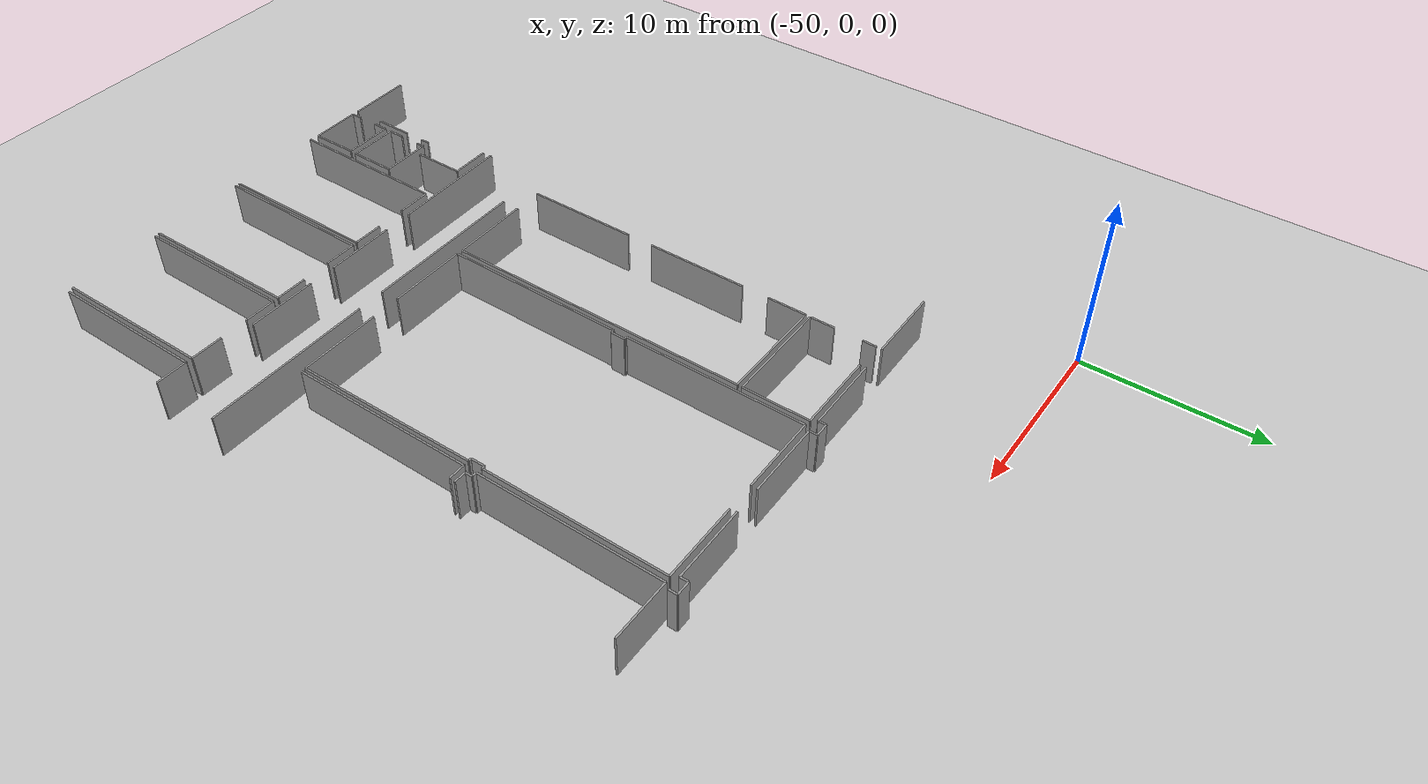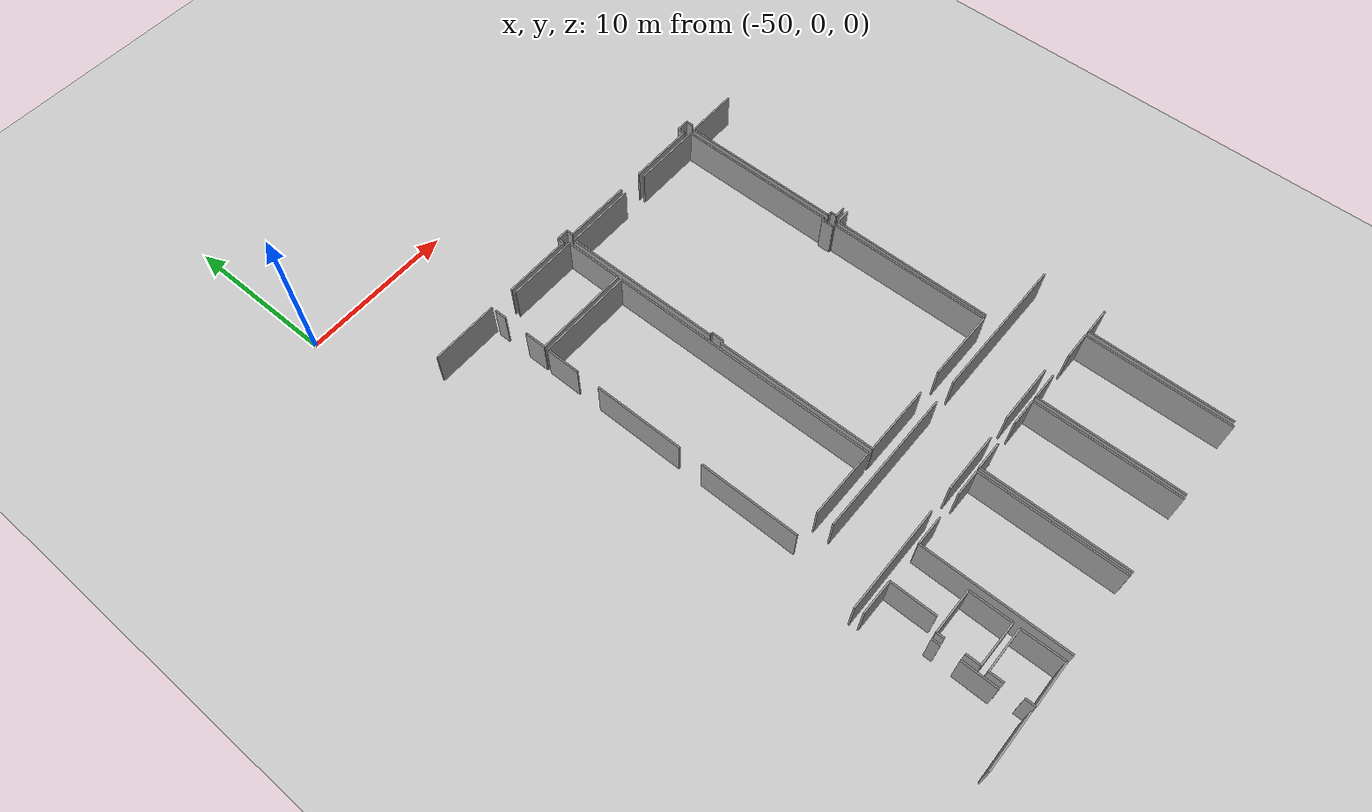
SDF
<sdf version="1.6">
 <world name="default">
  <model name="ground_plane">
   <static>1</static>
   <link name="link">
    <collision name="collision">
     <geometry><plane><normal>0 0 1</normal><size>100 100</size></plane></geometry>
     <surface><friction><ode><mu>100</mu><mu2>50</mu2></ode></friction></surface>
    </collision>
    <visual name="visual">
     <cast_shadows>0</cast_shadows>
     <geometry><plane><normal>0 0 1</normal><size>100 100</size></plane></geometry>
     <material>
      <script><uri>file://media/materials/scripts/gazebo.material</uri><name>Gazebo/Grey</name></script>
     </material>
    </visual>
   </link>
  </model>
  <model name="50015848">
   <static>1</static>
   <link name="Wall_643">
    <collision name="Wall_643_Collision">
     <geometry><box><size>0.479292605725 0.1 2.5</size></box></geometry>
     <pose>0.239646302863 0 1.25 0 0 0</pose>
    </collision>
    <visual name="Wall_643_Visual">
     <pose>0.239646302863 0 1.25 0 0 0</pose>
     <geometry><box><size>0.479292605725 0.1 2.5</size></box></geometry>
     <material>
      <script><uri>file://media/materials/scripts/gazebo.material</uri><name>Gazebo/Grey</name></script>
      <ambient>1 1 1 1</ambient>
     </material>
    </visual>
    <pose>107.364842149 -51.2619807293 0 0 0 1.57079632679</pose>
   </link>
   <link name="Wall_644">
    <collision name="Wall_644_Collision">
     <geometry><box><size>0.797975248812 0.1 2.5</size></box></geometry>
     <pose>0.398987624406 0 1.25 0 0 0</pose>
    </collision>
    <visual name="Wall_644_Visual">
     <pose>0.398987624406 0 1.25 0 0 0</pose>
     <geometry><box><size>0.797975248812 0.1 2.5</size></box></geometry>
     <material>
      <script><uri>file://media/materials/scripts/gazebo.material</uri><name>Gazebo/Grey</name></script>
      <ambient>1 1 1 1</ambient>
     </material>
    </visual>
    <pose>107.364842149 -50.7826881236 0 0 0 3.14159265359</pose>
   </link>
   <link name="Wall_645">
    <collision name="Wall_645_Collision">
     <geometry><box><size>0.464322640803 0.1 2.5</size></box></geometry>
     <pose>0.232161320402 0 1.25 0 0 0</pose>
    </collision>
    <visual name="Wall_645_Visual">
     <pose>0.232161320402 0 1.25 0 0 0</pose>
     <geometry><box><size>0.464322640803 0.1 2.5</size></box></geometry>
     <material>
      <script><uri>file://media/materials/scripts/gazebo.material</uri><name>Gazebo/Grey</name></script>
      <ambient>1 1 1 1</ambient>
     </material>
    </visual>
    <pose>106.566866901 -50.7826881236 0 0 0 -1.57079632679</pose>
   </link>
   <link name="Wall_646">
    <collision name="Wall_646_Collision">
     <geometry><box><size>4.35448369479 0.1 2.5</size></box></geometry>
     <pose>2.1772418474 0 1.25 0 0 0</pose>
    </collision>
    <visual name="Wall_646_Visual">
     <pose>2.1772418474 0 1.25 0 0 0</pose>
     <geometry><box><size>4.35448369479 0.1 2.5</size></box></geometry>
     <material>
      <script><uri>file://media/materials/scripts/gazebo.material</uri><name>Gazebo/Grey</name></script>
      <ambient>1 1 1 1</ambient>
     </material>
    </visual>
    <pose>106.566866901 -51.2470107644 0 0 0 3.14159265359</pose>
   </link>
   <link name="Wall_647">
    <collision name="Wall_647_Collision">
     <geometry><box><size>4.41258745695 0.1 2.5</size></box></geometry>
     <pose>2.20629372847 0 1.25 0 0 0</pose>
    </collision>
    <visual name="Wall_647_Visual">
     <pose>2.20629372847 0 1.25 0 0 0</pose>
     <geometry><box><size>4.41258745695 0.1 2.5</size></box></geometry>
     <material>
      <script><uri>file://media/materials/scripts/gazebo.material</uri><name>Gazebo/Grey</name></script>
      <ambient>1 1 1 1</ambient>
     </material>
    </visual>
    <pose>100.624805739 -51.2470107644 0 0 0 3.14159265359</pose>
   </link>
   <link name="Wall_648">
    <collision name="Wall_648_Collision">
     <geometry><box><size>0.446307937253 0.1 2.5</size></box></geometry>
     <pose>0.223153968627 0 1.25 0 0 0</pose>
    </collision>
    <visual name="Wall_648_Visual">
     <pose>0.223153968627 0 1.25 0 0 0</pose>
     <geometry><box><size>0.446307937253 0.1 2.5</size></box></geometry>
     <material>
      <script><uri>file://media/materials/scripts/gazebo.material</uri><name>Gazebo/Grey</name></script>
      <ambient>1 1 1 1</ambient>
     </material>
    </visual>
    <pose>96.2122182824 -51.2470107644 0 0 0 1.57079632679</pose>
   </link>
   <link name="Wall_649">
    <collision name="Wall_649_Collision">
     <geometry><box><size>0.786557478956 0.1 2.5</size></box></geometry>
     <pose>0.393278739478 0 1.25 0 0 0</pose>
    </collision>
    <visual name="Wall_649_Visual">
     <pose>0.393278739478 0 1.25 0 0 0</pose>
     <geometry><box><size>0.786557478956 0.1 2.5</size></box></geometry>
     <material>
      <script><uri>file://media/materials/scripts/gazebo.material</uri><name>Gazebo/Grey</name></script>
      <ambient>1 1 1 1</ambient>
     </material>
    </visual>
    <pose>96.2122182824 -50.8007028272 0 0 0 3.14159265359</pose>
   </link>
   <link name="Wall_650">
    <collision name="Wall_650_Collision">
     <geometry><box><size>0.431845428769 0.1 2.5</size></box></geometry>
     <pose>0.215922714384 0 1.25 0 0 0</pose>
    </collision>
    <visual name="Wall_650_Visual">
     <pose>0.215922714384 0 1.25 0 0 0</pose>
     <geometry><box><size>0.431845428769 0.1 2.5</size></box></geometry>
     <material>
      <script><uri>file://media/materials/scripts/gazebo.material</uri><name>Gazebo/Grey</name></script>
      <ambient>1 1 1 1</ambient>
     </material>
    </visual>
    <pose>95.4256608034 -50.8007028272 0 0 0 -1.57079632679</pose>
   </link>
   <link name="Wall_651">
    <collision name="Wall_651_Collision">
     <geometry><box><size>4.43922891994 0.1 2.5</size></box></geometry>
     <pose>2.21961445997 0 1.25 0 0 0</pose>
    </collision>
    <visual name="Wall_651_Visual">
     <pose>2.21961445997 0 1.25 0 0 0</pose>
     <geometry><box><size>4.43922891994 0.1 2.5</size></box></geometry>
     <material>
      <script><uri>file://media/materials/scripts/gazebo.material</uri><name>Gazebo/Grey</name></script>
      <ambient>1 1 1 1</ambient>
     </material>
    </visual>
    <pose>95.4256608034 -51.2325482559 0 0 0 3.14159265359</pose>
   </link>
   <link name="Wall_652">
    <collision name="Wall_652_Collision">
     <geometry><box><size>4.41108558579 0.1 2.5</size></box></geometry>
     <pose>2.20554279289 0 1.25 0 0 0</pose>
    </collision>
    <visual name="Wall_652_Visual">
     <pose>2.20554279289 0 1.25 0 0 0</pose>
     <geometry><box><size>4.41108558579 0.1 2.5</size></box></geometry>
     <material>
      <script><uri>file://media/materials/scripts/gazebo.material</uri><name>Gazebo/Grey</name></script>
      <ambient>1 1 1 1</ambient>
     </material>
    </visual>
    <pose>89.3833769957 -51.2325482559 0 0 0 -3.13854405791</pose>
   </link>
   <link name="Wall_1404">
    <collision name="Wall_1404_Collision">
     <geometry><box><size>0.696230232986 0.1 2.5</size></box></geometry>
     <pose>0.348115116493 0 1.25 0 0 0</pose>
    </collision>
    <visual name="Wall_1404_Visual">
     <pose>0.348115116493 0 1.25 0 0 0</pose>
     <geometry><box><size>0.696230232986 0.1 2.5</size></box></geometry>
     <material>
      <script><uri>file://media/materials/scripts/gazebo.material</uri><name>Gazebo/Grey</name></script>
      <ambient>1 1 1 1</ambient>
     </material>
    </visual>
    <pose>108.104713636 -62.4173956067 0 0 0 3.14159265359</pose>
   </link>
   <link name="Wall_1405">
    <collision name="Wall_1405_Collision">
     <geometry><box><size>0.406218878648 0.1 2.5</size></box></geometry>
     <pose>0.203109439324 0 1.25 0 0 0</pose>
    </collision>
    <visual name="Wall_1405_Visual">
     <pose>0.203109439324 0 1.25 0 0 0</pose>
     <geometry><box><size>0.406218878648 0.1 2.5</size></box></geometry>
     <material>
      <script><uri>file://media/materials/scripts/gazebo.material</uri><name>Gazebo/Grey</name></script>
      <ambient>1 1 1 1</ambient>
     </material>
    </visual>
    <pose>107.408483403 -62.4173956067 0 0 0 1.57079632679</pose>
   </link>
   <link name="Wall_1406">
    <collision name="Wall_1406_Collision">
     <geometry><box><size>0.275802574073 0.1 2.5</size></box></geometry>
     <pose>0.137901287036 0 1.25 0 0 0</pose>
    </collision>
    <visual name="Wall_1406_Visual">
     <pose>0.137901287036 0 1.25 0 0 0</pose>
     <geometry><box><size>0.275802574073 0.1 2.5</size></box></geometry>
     <material>
      <script><uri>file://media/materials/scripts/gazebo.material</uri><name>Gazebo/Grey</name></script>
      <ambient>1 1 1 1</ambient>
     </material>
    </visual>
    <pose>107.408483403 -62.011176728 0 0 0 3.14159265359</pose>
   </link>
   <link name="Wall_1407">
    <collision name="Wall_1407_Collision">
     <geometry><box><size>10.462229383 0.1 2.5</size></box></geometry>
     <pose>5.2311146915 0 1.25 0 0 0</pose>
    </collision>
    <visual name="Wall_1407_Visual">
     <pose>5.2311146915 0 1.25 0 0 0</pose>
     <geometry><box><size>10.462229383 0.1 2.5</size></box></geometry>
     <material>
      <script><uri>file://media/materials/scripts/gazebo.material</uri><name>Gazebo/Grey</name></script>
      <ambient>1 1 1 1</ambient>
     </material>
    </visual>
    <pose>107.132680829 -62.011176728 0 0 0 1.57079632679</pose>
   </link>
   <link name="Wall_1408">
    <collision name="Wall_1408_Collision">
     <geometry><box><size>3.46846475398 0.1 2.5</size></box></geometry>
     <pose>1.73423237699 0 1.25 0 0 0</pose>
    </collision>
    <visual name="Wall_1408_Visual">
     <pose>1.73423237699 0 1.25 0 0 0</pose>
     <geometry><box><size>3.46846475398 0.1 2.5</size></box></geometry>
     <material>
      <script><uri>file://media/materials/scripts/gazebo.material</uri><name>Gazebo/Grey</name></script>
      <ambient>1 1 1 1</ambient>
     </material>
    </visual>
    <pose>107.132680829 -51.5489473451 0 0 0 0.0</pose>
   </link>
   <link name="Wall_1412">
    <collision name="Wall_1412_Collision">
     <geometry><box><size>10.4586771879 0.1 2.5</size></box></geometry>
     <pose>5.22933859397 0 1.25 0 0 0</pose>
    </collision>
    <visual name="Wall_1412_Visual">
     <pose>5.22933859397 0 1.25 0 0 0</pose>
     <geometry><box><size>10.4586771879 0.1 2.5</size></box></geometry>
     <material>
      <script><uri>file://media/materials/scripts/gazebo.material</uri><name>Gazebo/Grey</name></script>
      <ambient>1 1 1 1</ambient>
     </material>
    </visual>
    <pose>107.11821832 -73.2104865873 0 0 0 1.57079632679</pose>
   </link>
   <link name="Wall_1413">
    <collision name="Wall_1413_Collision">
     <geometry><box><size>0.948182354471 0.1 2.5</size></box></geometry>
     <pose>0.474091177235 0 1.25 0 0 0</pose>
    </collision>
    <visual name="Wall_1413_Visual">
     <pose>0.474091177235 0 1.25 0 0 0</pose>
     <geometry><box><size>0.948182354471 0.1 2.5</size></box></geometry>
     <material>
      <script><uri>file://media/materials/scripts/gazebo.material</uri><name>Gazebo/Grey</name></script>
      <ambient>1 1 1 1</ambient>
     </material>
    </visual>
    <pose>107.11821832 -62.7518093994 0 0 0 0.0</pose>
   </link>
   <link name="Wall_1417">
    <collision name="Wall_1417_Collision">
     <geometry><box><size>4.66174856802 0.1 2.5</size></box></geometry>
     <pose>2.33087428401 0 1.25 0 0 0</pose>
    </collision>
    <visual name="Wall_1417_Visual">
     <pose>2.33087428401 0 1.25 0 0 0</pose>
     <geometry><box><size>4.66174856802 0.1 2.5</size></box></geometry>
     <material>
      <script><uri>file://media/materials/scripts/gazebo.material</uri><name>Gazebo/Grey</name></script>
      <ambient>1 1 1 1</ambient>
     </material>
    </visual>
    <pose>106.865505014 -73.2389041478 0 0 0 3.14159265359</pose>
   </link>
   <link name="Wall_1418">
    <collision name="Wall_1418_Collision">
     <geometry><box><size>4.56710794233 0.1 2.5</size></box></geometry>
     <pose>2.28355397116 0 1.25 0 0 0</pose>
    </collision>
    <visual name="Wall_1418_Visual">
     <pose>2.28355397116 0 1.25 0 0 0</pose>
     <geometry><box><size>4.56710794233 0.1 2.5</size></box></geometry>
     <material>
      <script><uri>file://media/materials/scripts/gazebo.material</uri><name>Gazebo/Grey</name></script>
      <ambient>1 1 1 1</ambient>
     </material>
    </visual>
    <pose>100.522553267 -73.2389041478 0 0 0 3.14159265359</pose>
   </link>
   <link name="Wall_1419">
    <collision name="Wall_1419_Collision">
     <geometry><box><size>10.4538563518 0.1 2.5</size></box></geometry>
     <pose>5.22692817588 0 1.25 0 0 0</pose>
    </collision>
    <visual name="Wall_1419_Visual">
     <pose>5.22692817588 0 1.25 0 0 0</pose>
     <geometry><box><size>10.4538563518 0.1 2.5</size></box></geometry>
     <material>
      <script><uri>file://media/materials/scripts/gazebo.material</uri><name>Gazebo/Grey</name></script>
      <ambient>1 1 1 1</ambient>
     </material>
    </visual>
    <pose>95.9554453247 -73.2389041478 0 0 0 1.57079632679</pose>
   </link>
   <link name="Wall_1420">
    <collision name="Wall_1420_Collision">
     <geometry><box><size>0.202982575215 0.1 2.5</size></box></geometry>
     <pose>0.101491287607 0 1.25 0 0 0</pose>
    </collision>
    <visual name="Wall_1420_Visual">
     <pose>0.101491287607 0 1.25 0 0 0</pose>
     <geometry><box><size>0.202982575215 0.1 2.5</size></box></geometry>
     <material>
      <script><uri>file://media/materials/scripts/gazebo.material</uri><name>Gazebo/Grey</name></script>
      <ambient>1 1 1 1</ambient>
     </material>
    </visual>
    <pose>95.9554453247 -62.7850477961 0 0 0 0.0</pose>
   </link>
   <link name="Wall_1421">
    <collision name="Wall_1421_Collision">
     <geometry><box><size>0.816243680582 0.1 2.5</size></box></geometry>
     <pose>0.408121840291 0 1.25 0 0 0</pose>
    </collision>
    <visual name="Wall_1421_Visual">
     <pose>0.408121840291 0 1.25 0 0 0</pose>
     <geometry><box><size>0.816243680582 0.1 2.5</size></box></geometry>
     <material>
      <script><uri>file://media/materials/scripts/gazebo.material</uri><name>Gazebo/Grey</name></script>
      <ambient>1 1 1 1</ambient>
     </material>
    </visual>
    <pose>96.1584279 -62.7850477961 0 0 0 1.57079632679</pose>
   </link>
   <link name="Wall_1422">
    <collision name="Wall_1422_Collision">
     <geometry><box><size>0.176594840437 0.1 2.5</size></box></geometry>
     <pose>0.0882974202183 0 1.25 0 0 0</pose>
    </collision>
    <visual name="Wall_1422_Visual">
     <pose>0.0882974202183 0 1.25 0 0 0</pose>
     <geometry><box><size>0.176594840437 0.1 2.5</size></box></geometry>
     <material>
      <script><uri>file://media/materials/scripts/gazebo.material</uri><name>Gazebo/Grey</name></script>
      <ambient>1 1 1 1</ambient>
     </material>
    </visual>
    <pose>96.1584279 -61.9688041155 0 0 0 3.14159265359</pose>
   </link>
   <link name="Wall_1423">
    <collision name="Wall_1423_Collision">
     <geometry><box><size>10.3698723113 0.1 2.5</size></box></geometry>
     <pose>5.18493615564 0 1.25 0 0 0</pose>
    </collision>
    <visual name="Wall_1423_Visual">
     <pose>5.18493615564 0 1.25 0 0 0</pose>
     <geometry><box><size>10.3698723113 0.1 2.5</size></box></geometry>
     <material>
      <script><uri>file://media/materials/scripts/gazebo.material</uri><name>Gazebo/Grey</name></script>
      <ambient>1 1 1 1</ambient>
     </material>
    </visual>
    <pose>95.9818330595 -61.9688041155 0 0 0 1.57079632679</pose>
   </link>
   <link name="Wall_1424">
    <collision name="Wall_1424_Collision">
     <geometry><box><size>4.61125665244 0.1 2.5</size></box></geometry>
     <pose>2.30562832622 0 1.25 0 0 0</pose>
    </collision>
    <visual name="Wall_1424_Visual">
     <pose>2.30562832622 0 1.25 0 0 0</pose>
     <geometry><box><size>4.61125665244 0.1 2.5</size></box></geometry>
     <material>
      <script><uri>file://media/materials/scripts/gazebo.material</uri><name>Gazebo/Grey</name></script>
      <ambient>1 1 1 1</ambient>
     </material>
    </visual>
    <pose>95.9818330595 -51.5989318042 0 0 0 0.0</pose>
   </link>
   <link name="Wall_1425">
    <collision name="Wall_1425_Collision">
     <geometry><box><size>4.51636229852 0.1 2.5</size></box></geometry>
     <pose>2.25818114926 0 1.25 0 0 0</pose>
    </collision>
    <visual name="Wall_1425_Visual">
     <pose>2.25818114926 0 1.25 0 0 0</pose>
     <geometry><box><size>4.51636229852 0.1 2.5</size></box></geometry>
     <material>
      <script><uri>file://media/materials/scripts/gazebo.material</uri><name>Gazebo/Grey</name></script>
      <ambient>1 1 1 1</ambient>
     </material>
    </visual>
    <pose>102.273277978 -51.5989318042 0 0 0 0.0</pose>
   </link>
   <link name="Wall_1426">
    <collision name="Wall_1426_Collision">
     <geometry><box><size>10.3604843672 0.1 2.5</size></box></geometry>
     <pose>5.18024218359 0 1.25 0 0 0</pose>
    </collision>
    <visual name="Wall_1426_Visual">
     <pose>5.18024218359 0 1.25 0 0 0</pose>
     <geometry><box><size>10.3604843672 0.1 2.5</size></box></geometry>
     <material>
      <script><uri>file://media/materials/scripts/gazebo.material</uri><name>Gazebo/Grey</name></script>
      <ambient>1 1 1 1</ambient>
     </material>
    </visual>
    <pose>106.789640277 -51.5989318042 0 0 0 -1.57079632679</pose>
   </link>
   <link name="Wall_1427">
    <collision name="Wall_1427_Collision">
     <geometry><box><size>0.169744178523 0.1 2.5</size></box></geometry>
     <pose>0.0848720892616 0 1.25 0 0 0</pose>
    </collision>
    <visual name="Wall_1427_Visual">
     <pose>0.0848720892616 0 1.25 0 0 0</pose>
     <geometry><box><size>0.169744178523 0.1 2.5</size></box></geometry>
     <material>
      <script><uri>file://media/materials/scripts/gazebo.material</uri><name>Gazebo/Grey</name></script>
      <ambient>1 1 1 1</ambient>
     </material>
    </visual>
    <pose>106.789640277 -61.9594161714 0 0 0 3.14159265359</pose>
   </link>
   <link name="Wall_1428">
    <collision name="Wall_1428_Collision">
     <geometry><box><size>0.807363192916 0.1 2.5</size></box></geometry>
     <pose>0.403681596458 0 1.25 0 0 0</pose>
    </collision>
    <visual name="Wall_1428_Visual">
     <pose>0.403681596458 0 1.25 0 0 0</pose>
     <geometry><box><size>0.807363192916 0.1 2.5</size></box></geometry>
     <material>
      <script><uri>file://media/materials/scripts/gazebo.material</uri><name>Gazebo/Grey</name></script>
      <ambient>1 1 1 1</ambient>
     </material>
    </visual>
    <pose>106.619896098 -61.9594161714 0 0 0 -1.57079632679</pose>
   </link>
   <link name="Wall_1429">
    <collision name="Wall_1429_Collision">
     <geometry><box><size>0.176594840437 0.1 2.5</size></box></geometry>
     <pose>0.0882974202183 0 1.25 0 0 0</pose>
    </collision>
    <visual name="Wall_1429_Visual">
     <pose>0.0882974202183 0 1.25 0 0 0</pose>
     <geometry><box><size>0.176594840437 0.1 2.5</size></box></geometry>
     <material>
      <script><uri>file://media/materials/scripts/gazebo.material</uri><name>Gazebo/Grey</name></script>
      <ambient>1 1 1 1</ambient>
     </material>
    </visual>
    <pose>106.619896098 -62.7667793643 0 0 0 0.0</pose>
   </link>
   <link name="Wall_1430">
    <collision name="Wall_1430_Collision">
     <geometry><box><size>10.4723521916 0.1 2.5</size></box></geometry>
     <pose>5.23617609579 0 1.25 0 0 0</pose>
    </collision>
    <visual name="Wall_1430_Visual">
     <pose>5.23617609579 0 1.25 0 0 0</pose>
     <geometry><box><size>10.4723521916 0.1 2.5</size></box></geometry>
     <material>
      <script><uri>file://media/materials/scripts/gazebo.material</uri><name>Gazebo/Grey</name></script>
      <ambient>1 1 1 1</ambient>
     </material>
    </visual>
    <pose>106.796490939 -62.7667793643 0 0 0 -1.56420615738</pose>
   </link>
   <link name="Wall_1431">
    <collision name="Wall_1431_Collision">
     <geometry><box><size>6.24120673141 0.1 2.5</size></box></geometry>
     <pose>3.1206033657 0 1.25 0 0 0</pose>
    </collision>
    <visual name="Wall_1431_Visual">
     <pose>3.1206033657 0 1.25 0 0 0</pose>
     <geometry><box><size>6.24120673141 0.1 2.5</size></box></geometry>
     <material>
      <script><uri>file://media/materials/scripts/gazebo.material</uri><name>Gazebo/Grey</name></script>
      <ambient>1 1 1 1</ambient>
     </material>
    </visual>
    <pose>95.617479337 -55.3477662402 0 0 0 3.14159265359</pose>
   </link>
   <link name="Wall_1432">
    <collision name="Wall_1432_Collision">
     <geometry><box><size>1.41707210322 0.1 2.5</size></box></geometry>
     <pose>0.708536051608 0 1.25 0 0 0</pose>
    </collision>
    <visual name="Wall_1432_Visual">
     <pose>0.708536051608 0 1.25 0 0 0</pose>
     <geometry><box><size>1.41707210322 0.1 2.5</size></box></geometry>
     <material>
      <script><uri>file://media/materials/scripts/gazebo.material</uri><name>Gazebo/Grey</name></script>
      <ambient>1 1 1 1</ambient>
     </material>
    </visual>
    <pose>89.3762726056 -55.3477662402 0 0 0 1.57079632679</pose>
   </link>
   <link name="Wall_1433">
    <collision name="Wall_1433_Collision">
     <geometry><box><size>0.778184447729 0.1 2.5</size></box></geometry>
     <pose>0.389092223864 0 1.25 0 0 0</pose>
    </collision>
    <visual name="Wall_1433_Visual">
     <pose>0.389092223864 0 1.25 0 0 0</pose>
     <geometry><box><size>0.778184447729 0.1 2.5</size></box></geometry>
     <material>
      <script><uri>file://media/materials/scripts/gazebo.material</uri><name>Gazebo/Grey</name></script>
      <ambient>1 1 1 1</ambient>
     </material>
    </visual>
    <pose>89.3762726056 -52.3271317928 0 0 0 1.57079632679</pose>
   </link>
   <link name="Wall_1434">
    <collision name="Wall_1434_Collision">
     <geometry><box><size>4.6427189516 0.1 2.5</size></box></geometry>
     <pose>2.3213594758 0 1.25 0 0 0</pose>
    </collision>
    <visual name="Wall_1434_Visual">
     <pose>2.3213594758 0 1.25 0 0 0</pose>
     <geometry><box><size>4.6427189516 0.1 2.5</size></box></geometry>
     <material>
      <script><uri>file://media/materials/scripts/gazebo.material</uri><name>Gazebo/Grey</name></script>
      <ambient>1 1 1 1</ambient>
     </material>
    </visual>
    <pose>90.9937900018 -51.5489473451 0 0 0 0.0</pose>
   </link>
   <link name="Wall_1435">
    <collision name="Wall_1435_Collision">
     <geometry><box><size>3.79886655785 0.1 2.5</size></box></geometry>
     <pose>1.89943327893 0 1.25 0 0 0</pose>
    </collision>
    <visual name="Wall_1435_Visual">
     <pose>1.89943327893 0 1.25 0 0 0</pose>
     <geometry><box><size>3.79886655785 0.1 2.5</size></box></geometry>
     <material>
      <script><uri>file://media/materials/scripts/gazebo.material</uri><name>Gazebo/Grey</name></script>
      <ambient>1 1 1 1</ambient>
     </material>
    </visual>
    <pose>95.6365089534 -51.5489473451 0 0 0 -1.57580563568</pose>
   </link>
   <link name="Wall_1444">
    <collision name="Wall_1444_Collision">
     <geometry><box><size>4.58791365629 0.1 2.5</size></box></geometry>
     <pose>2.29395682814 0 1.25 0 0 0</pose>
    </collision>
    <visual name="Wall_1444_Visual">
     <pose>2.29395682814 0 1.25 0 0 0</pose>
     <geometry><box><size>4.58791365629 0.1 2.5</size></box></geometry>
     <material>
      <script><uri>file://media/materials/scripts/gazebo.material</uri><name>Gazebo/Grey</name></script>
      <ambient>1 1 1 1</ambient>
     </material>
    </visual>
    <pose>95.6207778039 -73.2120089566 0 0 0 3.14159265359</pose>
   </link>
   <link name="Wall_1445">
    <collision name="Wall_1445_Collision">
     <geometry><box><size>6.40638380199 0.1 2.5</size></box></geometry>
     <pose>3.203191901 0 1.25 0 0 0</pose>
    </collision>
    <visual name="Wall_1445_Visual">
     <pose>3.203191901 0 1.25 0 0 0</pose>
     <geometry><box><size>6.40638380199 0.1 2.5</size></box></geometry>
     <material>
      <script><uri>file://media/materials/scripts/gazebo.material</uri><name>Gazebo/Grey</name></script>
      <ambient>1 1 1 1</ambient>
     </material>
    </visual>
    <pose>89.3618100971 -73.2120089566 0 0 0 1.57079632679</pose>
   </link>
   <link name="Wall_1446">
    <collision name="Wall_1446_Collision">
     <geometry><box><size>5.84665935084 0.1 2.5</size></box></geometry>
     <pose>2.92332967542 0 1.25 0 0 0</pose>
    </collision>
    <visual name="Wall_1446_Visual">
     <pose>2.92332967542 0 1.25 0 0 0</pose>
     <geometry><box><size>5.84665935084 0.1 2.5</size></box></geometry>
     <material>
      <script><uri>file://media/materials/scripts/gazebo.material</uri><name>Gazebo/Grey</name></script>
      <ambient>1 1 1 1</ambient>
     </material>
    </visual>
    <pose>89.3618100971 -65.2781812761 0 0 0 1.57079632679</pose>
   </link>
   <link name="Wall_1447">
    <collision name="Wall_1447_Collision">
     <geometry><box><size>2.25209167201 0.1 2.5</size></box></geometry>
     <pose>1.126045836 0 1.25 0 0 0</pose>
    </collision>
    <visual name="Wall_1447_Visual">
     <pose>1.126045836 0 1.25 0 0 0</pose>
     <geometry><box><size>2.25209167201 0.1 2.5</size></box></geometry>
     <material>
      <script><uri>file://media/materials/scripts/gazebo.material</uri><name>Gazebo/Grey</name></script>
      <ambient>1 1 1 1</ambient>
     </material>
    </visual>
    <pose>89.3618100971 -57.8802275942 0 0 0 1.57079632679</pose>
   </link>
   <link name="Wall_1448">
    <collision name="Wall_1448_Collision">
     <geometry><box><size>6.24222164429 0.1 2.5</size></box></geometry>
     <pose>3.12111082214 0 1.25 0 0 0</pose>
    </collision>
    <visual name="Wall_1448_Visual">
     <pose>3.12111082214 0 1.25 0 0 0</pose>
     <geometry><box><size>6.24222164429 0.1 2.5</size></box></geometry>
     <material>
      <script><uri>file://media/materials/scripts/gazebo.material</uri><name>Gazebo/Grey</name></script>
      <ambient>1 1 1 1</ambient>
     </material>
    </visual>
    <pose>89.3618100971 -55.6281359222 0 0 0 0.0</pose>
   </link>
   <link name="Wall_1449">
    <collision name="Wall_1449_Collision">
     <geometry><box><size>17.5838810085 0.1 2.5</size></box></geometry>
     <pose>8.79194050424 0 1.25 0 0 0</pose>
    </collision>
    <visual name="Wall_1449_Visual">
     <pose>8.79194050424 0 1.25 0 0 0</pose>
     <geometry><box><size>17.5838810085 0.1 2.5</size></box></geometry>
     <material>
      <script><uri>file://media/materials/scripts/gazebo.material</uri><name>Gazebo/Grey</name></script>
      <ambient>1 1 1 1</ambient>
     </material>
    </visual>
    <pose>95.6040317414 -55.6281359222 0 0 0 -1.56984397362</pose>
   </link>
   <link name="Wall_1474">
    <collision name="Wall_1474_Collision">
     <geometry><box><size>9.57062842137 0.1 2.5</size></box></geometry>
     <pose>4.78531421068 0 1.25 0 0 0</pose>
    </collision>
    <visual name="Wall_1474_Visual">
     <pose>4.78531421068 0 1.25 0 0 0</pose>
     <geometry><box><size>9.57062842137 0.1 2.5</size></box></geometry>
     <material>
      <script><uri>file://media/materials/scripts/gazebo.material</uri><name>Gazebo/Grey</name></script>
      <ambient>1 1 1 1</ambient>
     </material>
    </visual>
    <pose>91.022968747 -74.2462051773 0 0 0 0.0</pose>
   </link>
   <link name="Wall_1475">
    <collision name="Wall_1475_Collision">
     <geometry><box><size>9.57316570356 0.1 2.5</size></box></geometry>
     <pose>4.78658285178 0 1.25 0 0 0</pose>
    </collision>
    <visual name="Wall_1475_Visual">
     <pose>4.78658285178 0 1.25 0 0 0</pose>
     <geometry><box><size>9.57316570356 0.1 2.5</size></box></geometry>
     <material>
      <script><uri>file://media/materials/scripts/gazebo.material</uri><name>Gazebo/Grey</name></script>
      <ambient>1 1 1 1</ambient>
     </material>
    </visual>
    <pose>102.198428154 -74.2462051773 0 0 0 0.0</pose>
   </link>
   <link name="Wall_1508">
    <collision name="Wall_1508_Collision">
     <geometry><box><size>3.933041123 0.1 2.5</size></box></geometry>
     <pose>1.9665205615 0 1.25 0 0 0</pose>
    </collision>
    <visual name="Wall_1508_Visual">
     <pose>1.9665205615 0 1.25 0 0 0</pose>
     <geometry><box><size>3.933041123 0.1 2.5</size></box></geometry>
     <material>
      <script><uri>file://media/materials/scripts/gazebo.material</uri><name>Gazebo/Grey</name></script>
      <ambient>1 1 1 1</ambient>
     </material>
    </visual>
    <pose>106.16952851 -77.7331920913 0 0 0 3.14159265359</pose>
   </link>
   <link name="Wall_1509">
    <collision name="Wall_1509_Collision">
     <geometry><box><size>3.96019004244 0.1 2.5</size></box></geometry>
     <pose>1.98009502122 0 1.25 0 0 0</pose>
    </collision>
    <visual name="Wall_1509_Visual">
     <pose>1.98009502122 0 1.25 0 0 0</pose>
     <geometry><box><size>3.96019004244 0.1 2.5</size></box></geometry>
     <material>
      <script><uri>file://media/materials/scripts/gazebo.material</uri><name>Gazebo/Grey</name></script>
      <ambient>1 1 1 1</ambient>
     </material>
    </visual>
    <pose>100.615164067 -77.7331920913 0 0 0 3.14159265359</pose>
   </link>
   <link name="Wall_1510">
    <collision name="Wall_1510_Collision">
     <geometry><box><size>6.93523306149 0.1 2.5</size></box></geometry>
     <pose>3.46761653074 0 1.25 0 0 0</pose>
    </collision>
    <visual name="Wall_1510_Visual">
     <pose>3.46761653074 0 1.25 0 0 0</pose>
     <geometry><box><size>6.93523306149 0.1 2.5</size></box></geometry>
     <material>
      <script><uri>file://media/materials/scripts/gazebo.material</uri><name>Gazebo/Grey</name></script>
      <ambient>1 1 1 1</ambient>
     </material>
    </visual>
    <pose>94.9651440859 -77.7331920913 0 0 0 -3.13679994891</pose>
   </link>
   <link name="Wall_1511">
    <collision name="Wall_1511_Collision">
     <geometry><box><size>2.88615849133 0.1 2.5</size></box></geometry>
     <pose>1.44307924567 0 1.25 0 0 0</pose>
    </collision>
    <visual name="Wall_1511_Visual">
     <pose>1.44307924567 0 1.25 0 0 0</pose>
     <geometry><box><size>2.88615849133 0.1 2.5</size></box></geometry>
     <material>
      <script><uri>file://media/materials/scripts/gazebo.material</uri><name>Gazebo/Grey</name></script>
      <ambient>1 1 1 1</ambient>
     </material>
    </visual>
    <pose>90.3655589316 -81.1864331521 0 0 0 1.57079632679</pose>
   </link>
   <link name="Wall_1512">
    <collision name="Wall_1512_Collision">
     <geometry><box><size>2.25209167201 0.1 2.5</size></box></geometry>
     <pose>1.126045836 0 1.25 0 0 0</pose>
    </collision>
    <visual name="Wall_1512_Visual">
     <pose>1.126045836 0 1.25 0 0 0</pose>
     <geometry><box><size>2.25209167201 0.1 2.5</size></box></geometry>
     <material>
      <script><uri>file://media/materials/scripts/gazebo.material</uri><name>Gazebo/Grey</name></script>
      <ambient>1 1 1 1</ambient>
     </material>
    </visual>
    <pose>90.3655589316 -78.3002746608 0 0 0 3.14159265359</pose>
   </link>
   <link name="Wall_1516">
    <collision name="Wall_1516_Collision">
     <geometry><box><size>3.68895457631 0.1 2.5</size></box></geometry>
     <pose>1.84447728815 0 1.25 0 0 0</pose>
    </collision>
    <visual name="Wall_1516_Visual">
     <pose>1.84447728815 0 1.25 0 0 0</pose>
     <geometry><box><size>3.68895457631 0.1 2.5</size></box></geometry>
     <material>
      <script><uri>file://media/materials/scripts/gazebo.material</uri><name>Gazebo/Grey</name></script>
      <ambient>1 1 1 1</ambient>
     </material>
    </visual>
    <pose>89.264378461 -87.3426409302 0 0 0 3.14159265359</pose>
   </link>
   <link name="Wall_1520">
    <collision name="Wall_1520_Collision">
     <geometry><box><size>0.549321594174 0.1 2.5</size></box></geometry>
     <pose>0.274660797087 0 1.25 0 0 0</pose>
    </collision>
    <visual name="Wall_1520_Visual">
     <pose>0.274660797087 0 1.25 0 0 0</pose>
     <geometry><box><size>0.549321594174 0.1 2.5</size></box></geometry>
     <material>
      <script><uri>file://media/materials/scripts/gazebo.material</uri><name>Gazebo/Grey</name></script>
      <ambient>1 1 1 1</ambient>
     </material>
    </visual>
    <pose>89.2138865454 -81.6200546784 0 0 0 -1.57079632679</pose>
   </link>
   <link name="Wall_1521">
    <collision name="Wall_1521_Collision">
     <geometry><box><size>2.23407696846 0.1 2.5</size></box></geometry>
     <pose>1.11703848423 0 1.25 0 0 0</pose>
    </collision>
    <visual name="Wall_1521_Visual">
     <pose>1.11703848423 0 1.25 0 0 0</pose>
     <geometry><box><size>2.23407696846 0.1 2.5</size></box></geometry>
     <material>
      <script><uri>file://media/materials/scripts/gazebo.material</uri><name>Gazebo/Grey</name></script>
      <ambient>1 1 1 1</ambient>
     </material>
    </visual>
    <pose>89.2138865454 -83.3218098434 0 0 0 -1.57079632679</pose>
   </link>
   <link name="Wall_1523">
    <collision name="Wall_1523_Collision">
     <geometry><box><size>2.64917633477 0.1 2.5</size></box></geometry>
     <pose>1.32458816738 0 1.25 0 0 0</pose>
    </collision>
    <visual name="Wall_1523_Visual">
     <pose>1.32458816738 0 1.25 0 0 0</pose>
     <geometry><box><size>2.64917633477 0.1 2.5</size></box></geometry>
     <material>
      <script><uri>file://media/materials/scripts/gazebo.material</uri><name>Gazebo/Grey</name></script>
      <ambient>1 1 1 1</ambient>
     </material>
    </visual>
    <pose>92.5039803614 -84.2750667622 0 0 0 1.57079632679</pose>
   </link>
   <link name="Wall_1524">
    <collision name="Wall_1524_Collision">
     <geometry><box><size>2.86332295162 0.1 2.5</size></box></geometry>
     <pose>1.43166147581 0 1.25 0 0 0</pose>
    </collision>
    <visual name="Wall_1524_Visual">
     <pose>1.43166147581 0 1.25 0 0 0</pose>
     <geometry><box><size>2.86332295162 0.1 2.5</size></box></geometry>
     <material>
      <script><uri>file://media/materials/scripts/gazebo.material</uri><name>Gazebo/Grey</name></script>
      <ambient>1 1 1 1</ambient>
     </material>
    </visual>
    <pose>92.5039803614 -81.6258904275 0 0 0 3.14159265359</pose>
   </link>
   <link name="Wall_1525">
    <collision name="Wall_1525_Collision">
     <geometry><box><size>0.489949190924 0.1 2.5</size></box></geometry>
     <pose>0.244974595462 0 1.25 0 0 0</pose>
    </collision>
    <visual name="Wall_1525_Visual">
     <pose>0.244974595462 0 1.25 0 0 0</pose>
     <geometry><box><size>0.489949190924 0.1 2.5</size></box></geometry>
     <material>
      <script><uri>file://media/materials/scripts/gazebo.material</uri><name>Gazebo/Grey</name></script>
      <ambient>1 1 1 1</ambient>
     </material>
    </visual>
    <pose>89.6406574098 -81.6258904275 0 0 0 -1.57079632679</pose>
   </link>
   <link name="Wall_1526">
    <collision name="Wall_1526_Collision">
     <geometry><box><size>0.925346814759 0.1 2.5</size></box></geometry>
     <pose>0.46267340738 0 1.25 0 0 0</pose>
    </collision>
    <visual name="Wall_1526_Visual">
     <pose>0.46267340738 0 1.25 0 0 0</pose>
     <geometry><box><size>0.925346814759 0.1 2.5</size></box></geometry>
     <material>
      <script><uri>file://media/materials/scripts/gazebo.material</uri><name>Gazebo/Grey</name></script>
      <ambient>1 1 1 1</ambient>
     </material>
    </visual>
    <pose>89.6406574098 -83.3177501919 0 0 0 -1.57079632679</pose>
   </link>
   <link name="Wall_1527">
    <collision name="Wall_1527_Collision">
     <geometry><box><size>2.86350142143 0.1 2.5</size></box></geometry>
     <pose>1.43175071072 0 1.25 0 0 0</pose>
    </collision>
    <visual name="Wall_1527_Visual">
     <pose>1.43175071072 0 1.25 0 0 0</pose>
     <geometry><box><size>2.86350142143 0.1 2.5</size></box></geometry>
     <material>
      <script><uri>file://media/materials/scripts/gazebo.material</uri><name>Gazebo/Grey</name></script>
      <ambient>1 1 1 1</ambient>
     </material>
    </visual>
    <pose>89.6406574098 -84.2430970066 0 0 0 -0.0111647996935</pose>
   </link>
   <link name="Wall_1528">
    <collision name="Wall_1528_Collision">
     <geometry><box><size>2.87600936257 0.1 2.5</size></box></geometry>
     <pose>1.43800468129 0 1.25 0 0 0</pose>
    </collision>
    <visual name="Wall_1528_Visual">
     <pose>1.43800468129 0 1.25 0 0 0</pose>
     <geometry><box><size>2.87600936257 0.1 2.5</size></box></geometry>
     <material>
      <script><uri>file://media/materials/scripts/gazebo.material</uri><name>Gazebo/Grey</name></script>
      <ambient>1 1 1 1</ambient>
     </material>
    </visual>
    <pose>92.5039803614 -87.3781628808 0 0 0 3.14159265359</pose>
   </link>
   <link name="Wall_1529">
    <collision name="Wall_1529_Collision">
     <geometry><box><size>0.618081941528 0.1 2.5</size></box></geometry>
     <pose>0.309040970764 0 1.25 0 0 0</pose>
    </collision>
    <visual name="Wall_1529_Visual">
     <pose>0.309040970764 0 1.25 0 0 0</pose>
     <geometry><box><size>0.618081941528 0.1 2.5</size></box></geometry>
     <material>
      <script><uri>file://media/materials/scripts/gazebo.material</uri><name>Gazebo/Grey</name></script>
      <ambient>1 1 1 1</ambient>
     </material>
    </visual>
    <pose>89.6279709989 -87.3781628808 0 0 0 1.57079632679</pose>
   </link>
   <link name="Wall_1530">
    <collision name="Wall_1530_Collision">
     <geometry><box><size>0.900988905734 0.1 2.5</size></box></geometry>
     <pose>0.450494452867 0 1.25 0 0 0</pose>
    </collision>
    <visual name="Wall_1530_Visual">
     <pose>0.450494452867 0 1.25 0 0 0</pose>
     <geometry><box><size>0.900988905734 0.1 2.5</size></box></geometry>
     <material>
      <script><uri>file://media/materials/scripts/gazebo.material</uri><name>Gazebo/Grey</name></script>
      <ambient>1 1 1 1</ambient>
     </material>
    </visual>
    <pose>89.6279709989 -85.5909013061 0 0 0 1.57079632679</pose>
   </link>
   <link name="Wall_1531">
    <collision name="Wall_1531_Collision">
     <geometry><box><size>2.83972622725 0.1 2.5</size></box></geometry>
     <pose>1.41986311363 0 1.25 0 0 0</pose>
    </collision>
    <visual name="Wall_1531_Visual">
     <pose>1.41986311363 0 1.25 0 0 0</pose>
     <geometry><box><size>2.83972622725 0.1 2.5</size></box></geometry>
     <material>
      <script><uri>file://media/materials/scripts/gazebo.material</uri><name>Gazebo/Grey</name></script>
      <ambient>1 1 1 1</ambient>
     </material>
    </visual>
    <pose>89.6279709989 -84.6899124003 0 0 0 0.0</pose>
   </link>
   <link name="Wall_1532">
    <collision name="Wall_1532_Collision">
     <geometry><box><size>2.68849532486 0.1 2.5</size></box></geometry>
     <pose>1.34424766243 0 1.25 0 0 0</pose>
    </collision>
    <visual name="Wall_1532_Visual">
     <pose>1.34424766243 0 1.25 0 0 0</pose>
     <geometry><box><size>2.68849532486 0.1 2.5</size></box></geometry>
     <material>
      <script><uri>file://media/materials/scripts/gazebo.material</uri><name>Gazebo/Grey</name></script>
      <ambient>1 1 1 1</ambient>
     </material>
    </visual>
    <pose>92.4676972261 -84.6899124003 0 0 0 -1.55730021376</pose>
   </link>
   <link name="Wall_1533">
    <collision name="Wall_1533_Collision">
     <geometry><box><size>9.21845365337 0.1 2.5</size></box></geometry>
     <pose>4.60922682668 0 1.25 0 0 0</pose>
    </collision>
    <visual name="Wall_1533_Visual">
     <pose>4.60922682668 0 1.25 0 0 0</pose>
     <geometry><box><size>9.21845365337 0.1 2.5</size></box></geometry>
     <material>
      <script><uri>file://media/materials/scripts/gazebo.material</uri><name>Gazebo/Grey</name></script>
      <ambient>1 1 1 1</ambient>
     </material>
    </visual>
    <pose>93.0086457891 -87.4854899175 0 0 0 1.57079632679</pose>
   </link>
   <link name="Wall_1534">
    <collision name="Wall_1534_Collision">
     <geometry><box><size>1.94482679877 0.1 2.5</size></box></geometry>
     <pose>0.972413399387 0 1.25 0 0 0</pose>
    </collision>
    <visual name="Wall_1534_Visual">
     <pose>0.972413399387 0 1.25 0 0 0</pose>
     <geometry><box><size>1.94482679877 0.1 2.5</size></box></geometry>
     <material>
      <script><uri>file://media/materials/scripts/gazebo.material</uri><name>Gazebo/Grey</name></script>
      <ambient>1 1 1 1</ambient>
     </material>
    </visual>
    <pose>93.0086457891 -78.2670362641 0 0 0 0.0</pose>
   </link>
   <link name="Wall_1535">
    <collision name="Wall_1535_Collision">
     <geometry><box><size>1.72712798686 0.1 2.5</size></box></geometry>
     <pose>0.863563993428 0 1.25 0 0 0</pose>
    </collision>
    <visual name="Wall_1535_Visual">
     <pose>0.863563993428 0 1.25 0 0 0</pose>
     <geometry><box><size>1.72712798686 0.1 2.5</size></box></geometry>
     <material>
      <script><uri>file://media/materials/scripts/gazebo.material</uri><name>Gazebo/Grey</name></script>
      <ambient>1 1 1 1</ambient>
     </material>
    </visual>
    <pose>96.6912571599 -78.2670362641 0 0 0 0.0</pose>
   </link>
   <link name="Wall_1536">
    <collision name="Wall_1536_Collision">
     <geometry><box><size>9.21848650767 0.1 2.5</size></box></geometry>
     <pose>4.60924325383 0 1.25 0 0 0</pose>
    </collision>
    <visual name="Wall_1536_Visual">
     <pose>4.60924325383 0 1.25 0 0 0</pose>
     <geometry><box><size>9.21848650767 0.1 2.5</size></box></geometry>
     <material>
      <script><uri>file://media/materials/scripts/gazebo.material</uri><name>Gazebo/Grey</name></script>
      <ambient>1 1 1 1</ambient>
     </material>
    </visual>
    <pose>98.4183851468 -78.2670362641 0 0 0 -1.56812651039</pose>
   </link>
   <link name="Wall_1537">
    <collision name="Wall_1537_Collision">
     <geometry><box><size>9.27731860018 0.1 2.5</size></box></geometry>
     <pose>4.63865930009 0 1.25 0 0 0</pose>
    </collision>
    <visual name="Wall_1537_Visual">
     <pose>4.63865930009 0 1.25 0 0 0</pose>
     <geometry><box><size>9.27731860018 0.1 2.5</size></box></geometry>
     <material>
      <script><uri>file://media/materials/scripts/gazebo.material</uri><name>Gazebo/Grey</name></script>
      <ambient>1 1 1 1</ambient>
     </material>
    </visual>
    <pose>98.7040831214 -87.5217730528 0 0 0 1.57079632679</pose>
   </link>
   <link name="Wall_1538">
    <collision name="Wall_1538_Collision">
     <geometry><box><size>1.84257432651 0.1 2.5</size></box></geometry>
     <pose>0.921287163255 0 1.25 0 0 0</pose>
    </collision>
    <visual name="Wall_1538_Visual">
     <pose>0.921287163255 0 1.25 0 0 0</pose>
     <geometry><box><size>1.84257432651 0.1 2.5</size></box></geometry>
     <material>
      <script><uri>file://media/materials/scripts/gazebo.material</uri><name>Gazebo/Grey</name></script>
      <ambient>1 1 1 1</ambient>
     </material>
    </visual>
    <pose>98.7040831214 -78.2444544526 0 0 0 0.0</pose>
   </link>
   <link name="Wall_1539">
    <collision name="Wall_1539_Collision">
     <geometry><box><size>1.80350018078 0.1 2.5</size></box></geometry>
     <pose>0.901750090391 0 1.25 0 0 0</pose>
    </collision>
    <visual name="Wall_1539_Visual">
     <pose>0.901750090391 0 1.25 0 0 0</pose>
     <geometry><box><size>1.80350018078 0.1 2.5</size></box></geometry>
     <material>
      <script><uri>file://media/materials/scripts/gazebo.material</uri><name>Gazebo/Grey</name></script>
      <ambient>1 1 1 1</ambient>
     </material>
    </visual>
    <pose>102.217204042 -78.2444544526 0 0 0 0.0</pose>
   </link>
   <link name="Wall_1540">
    <collision name="Wall_1540_Collision">
     <geometry><box><size>9.27739771123 0.1 2.5</size></box></geometry>
     <pose>4.63869885561 0 1.25 0 0 0</pose>
    </collision>
    <visual name="Wall_1540_Visual">
     <pose>4.63869885561 0 1.25 0 0 0</pose>
     <geometry><box><size>9.27739771123 0.1 2.5</size></box></geometry>
     <material>
      <script><uri>file://media/materials/scripts/gazebo.material</uri><name>Gazebo/Grey</name></script>
      <ambient>1 1 1 1</ambient>
     </material>
    </visual>
    <pose>104.020704223 -78.2444544526 0 0 0 -1.56666660517</pose>
   </link>
   <link name="Wall_1541">
    <collision name="Wall_1541_Collision">
     <geometry><box><size>9.23316989007 0.1 2.5</size></box></geometry>
     <pose>4.61658494504 0 1.25 0 0 0</pose>
    </collision>
    <visual name="Wall_1541_Visual">
     <pose>4.61658494504 0 1.25 0 0 0</pose>
     <geometry><box><size>9.23316989007 0.1 2.5</size></box></geometry>
     <material>
      <script><uri>file://media/materials/scripts/gazebo.material</uri><name>Gazebo/Grey</name></script>
      <ambient>1 1 1 1</ambient>
     </material>
    </visual>
    <pose>104.346744984 -87.4834600917 0 0 0 1.57079632679</pose>
   </link>
   <link name="Wall_1542">
    <collision name="Wall_1542_Collision">
     <geometry><box><size>1.80096289859 0.1 2.5</size></box></geometry>
     <pose>0.900481449296 0 1.25 0 0 0</pose>
    </collision>
    <visual name="Wall_1542_Visual">
     <pose>0.900481449296 0 1.25 0 0 0</pose>
     <geometry><box><size>1.80096289859 0.1 2.5</size></box></geometry>
     <material>
      <script><uri>file://media/materials/scripts/gazebo.material</uri><name>Gazebo/Grey</name></script>
      <ambient>1 1 1 1</ambient>
     </material>
    </visual>
    <pose>104.346744984 -78.2502902017 0 0 0 0.0</pose>
   </link>
   <link name="Wall_1543">
    <collision name="Wall_1543_Collision">
     <geometry><box><size>1.83141028487 0.1 2.5</size></box></geometry>
     <pose>0.915705142437 0 1.25 0 0 0</pose>
    </collision>
    <visual name="Wall_1543_Visual">
     <pose>0.915705142437 0 1.25 0 0 0</pose>
     <geometry><box><size>1.83141028487 0.1 2.5</size></box></geometry>
     <material>
      <script><uri>file://media/materials/scripts/gazebo.material</uri><name>Gazebo/Grey</name></script>
      <ambient>1 1 1 1</ambient>
     </material>
    </visual>
    <pose>107.76370291 -78.2502902017 0 0 0 0.0</pose>
   </link>
   <link name="Wall_1544">
    <collision name="Wall_1544_Collision">
     <geometry><box><size>9.23328920571 0.1 2.5</size></box></geometry>
     <pose>4.61664460286 0 1.25 0 0 0</pose>
    </collision>
    <visual name="Wall_1544_Visual">
     <pose>4.61664460286 0 1.25 0 0 0</pose>
     <geometry><box><size>9.23328920571 0.1 2.5</size></box></geometry>
     <material>
      <script><uri>file://media/materials/scripts/gazebo.material</uri><name>Gazebo/Grey</name></script>
      <ambient>1 1 1 1</ambient>
     </material>
    </visual>
    <pose>109.595113195 -78.2502902017 0 0 0 -1.56571255636</pose>
   </link>
   <link name="Wall_1546">
    <collision name="Wall_1546_Collision">
     <geometry><box><size>9.08575379482 0.1 2.5</size></box></geometry>
     <pose>4.54287689741 0 1.25 0 0 0</pose>
    </collision>
    <visual name="Wall_1546_Visual">
     <pose>4.54287689741 0 1.25 0 0 0</pose>
     <geometry><box><size>9.08575379482 0.1 2.5</size></box></geometry>
     <material>
      <script><uri>file://media/materials/scripts/gazebo.material</uri><name>Gazebo/Grey</name></script>
      <ambient>1 1 1 1</ambient>
     </material>
    </visual>
    <pose>109.950332701 -87.3591332644 0 0 0 1.57079632679</pose>
   </link>
   <link name="Wall_1547">
    <collision name="Wall_1547_Collision">
     <geometry><box><size>1.76670958902 0.1 2.5</size></box></geometry>
     <pose>0.883354794512 0 1.25 0 0 0</pose>
    </collision>
    <visual name="Wall_1547_Visual">
     <pose>0.883354794512 0 1.25 0 0 0</pose>
     <geometry><box><size>1.76670958902 0.1 2.5</size></box></geometry>
     <material>
      <script><uri>file://media/materials/scripts/gazebo.material</uri><name>Gazebo/Grey</name></script>
      <ambient>1 1 1 1</ambient>
     </material>
    </visual>
    <pose>109.950332701 -78.2733794696 0 0 0 0.0</pose>
   </link>
   <pose>-131.8 43.7717730528 0 0 0 0</pose>
  </model>
 </world>
</sdf>
